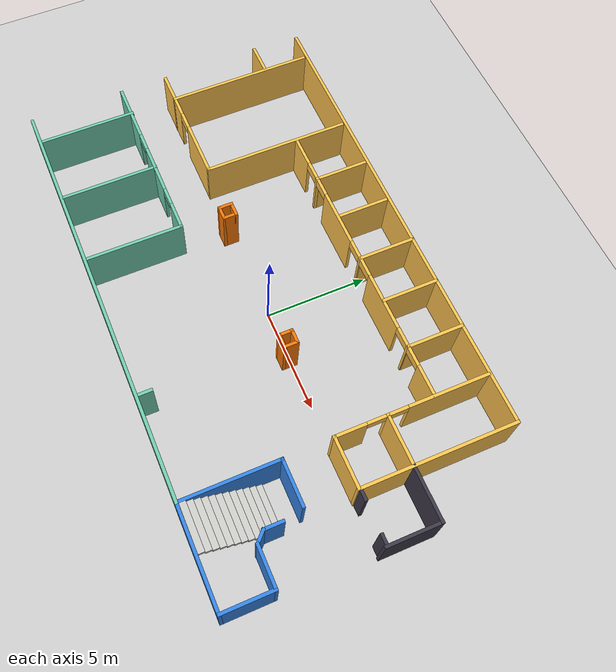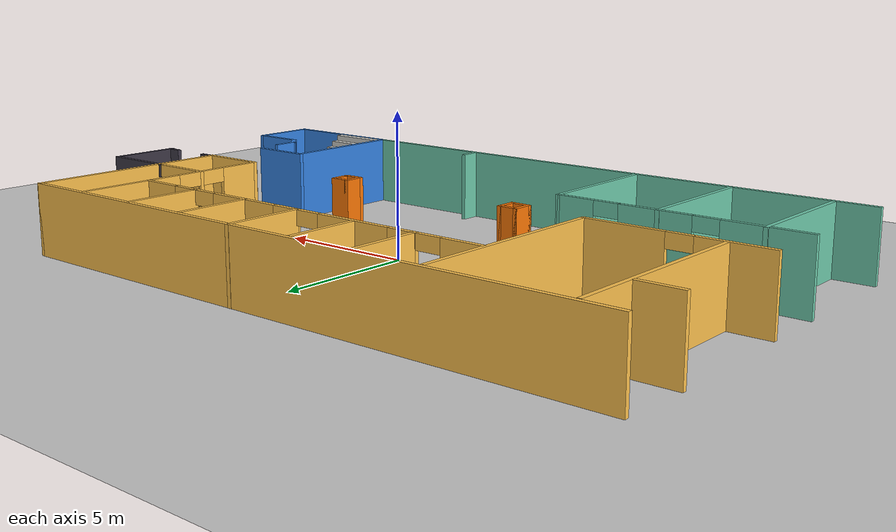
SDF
<sdf version="1.7">
 <world name="default">
  <model name="ground_plane">
   <static>1</static>
   <link name="link">
    <collision name="collision">
     <geometry><plane><normal>0 0 1</normal><size>100 100</size></plane></geometry>
     <surface>
      <contact><collide_bitmask>65535</collide_bitmask></contact>
      <friction><ode><mu>100</mu><mu2>50</mu2></ode></friction>
     </surface>
    </collision>
    <visual name="visual">
     <cast_shadows>0</cast_shadows>
     <geometry><plane><normal>0 0 1</normal><size>100 100</size></plane></geometry>
     <material>
      <script><uri>file://media/materials/scripts/gazebo.material</uri><name>Gazebo/Grey</name></script>
     </material>
    </visual>
   </link>
  </model>
  <model name="HUMEA_LABF">
   <pose>-0.653403 0.039249 0 0 -0 0</pose>
   <link name="Stairs_2">
    <visual name="Stairs_2_Visual_0">
     <pose>9.09481 -3.61254 0.104167 0 -0 0</pose>
     <geometry><box><size>2.18072 0.301964 0.208333</size></box></geometry>
     <material>
      <script><uri>file://media/materials/scripts/gazebo.material</uri><name>Gazebo/CeilingTiled</name></script>
      <ambient>0.964706 0.827451 0.176471 1</ambient>
     </material>
     <meta><layer>0</layer></meta>
    </visual>
    <collision name="Stairs_2_Collision_0">
     <geometry><box><size>2.18072 0.301964 0.208333</size></box></geometry>
     <pose>9.09481 -3.61254 0.104167 0 -0 0</pose>
    </collision>
    <visual name="Stairs_2_Visual_1">
     <pose>9.09481 -3.91451 0.3125 0 -0 0</pose>
     <geometry><box><size>2.18072 0.301964 0.208333</size></box></geometry>
     <material>
      <script><uri>file://media/materials/scripts/gazebo.material</uri><name>Gazebo/CeilingTiled</name></script>
      <ambient>0.964706 0.827451 0.176471 1</ambient>
     </material>
     <meta><layer>0</layer></meta>
    </visual>
    <collision name="Stairs_2_Collision_1">
     <geometry><box><size>2.18072 0.301964 0.208333</size></box></geometry>
     <pose>9.09481 -3.91451 0.3125 0 -0 0</pose>
    </collision>
    <visual name="Stairs_2_Visual_2">
     <pose>9.09481 -4.21647 0.520833 0 -0 0</pose>
     <geometry><box><size>2.18072 0.301964 0.208333</size></box></geometry>
     <material>
      <script><uri>file://media/materials/scripts/gazebo.material</uri><name>Gazebo/CeilingTiled</name></script>
      <ambient>0.964706 0.827451 0.176471 1</ambient>
     </material>
     <meta><layer>0</layer></meta>
    </visual>
    <collision name="Stairs_2_Collision_2">
     <geometry><box><size>2.18072 0.301964 0.208333</size></box></geometry>
     <pose>9.09481 -4.21647 0.520833 0 -0 0</pose>
    </collision>
    <visual name="Stairs_2_Visual_3">
     <pose>9.09481 -4.51844 0.729167 0 -0 0</pose>
     <geometry><box><size>2.18072 0.301964 0.208333</size></box></geometry>
     <material>
      <script><uri>file://media/materials/scripts/gazebo.material</uri><name>Gazebo/CeilingTiled</name></script>
      <ambient>0.964706 0.827451 0.176471 1</ambient>
     </material>
     <meta><layer>0</layer></meta>
    </visual>
    <collision name="Stairs_2_Collision_3">
     <geometry><box><size>2.18072 0.301964 0.208333</size></box></geometry>
     <pose>9.09481 -4.51844 0.729167 0 -0 0</pose>
    </collision>
    <visual name="Stairs_2_Visual_4">
     <pose>9.09481 -4.8204 0.9375 0 -0 0</pose>
     <geometry><box><size>2.18072 0.301964 0.208333</size></box></geometry>
     <material>
      <script><uri>file://media/materials/scripts/gazebo.material</uri><name>Gazebo/CeilingTiled</name></script>
      <ambient>0.964706 0.827451 0.176471 1</ambient>
     </material>
     <meta><layer>0</layer></meta>
    </visual>
    <collision name="Stairs_2_Collision_4">
     <geometry><box><size>2.18072 0.301964 0.208333</size></box></geometry>
     <pose>9.09481 -4.8204 0.9375 0 -0 0</pose>
    </collision>
    <visual name="Stairs_2_Visual_5">
     <pose>9.09481 -5.12236 1.14583 0 -0 0</pose>
     <geometry><box><size>2.18072 0.301964 0.208333</size></box></geometry>
     <material>
      <script><uri>file://media/materials/scripts/gazebo.material</uri><name>Gazebo/CeilingTiled</name></script>
      <ambient>0.964706 0.827451 0.176471 1</ambient>
     </material>
     <meta><layer>0</layer></meta>
    </visual>
    <collision name="Stairs_2_Collision_5">
     <geometry><box><size>2.18072 0.301964 0.208333</size></box></geometry>
     <pose>9.09481 -5.12236 1.14583 0 -0 0</pose>
    </collision>
    <visual name="Stairs_2_Visual_6">
     <pose>9.09481 -5.42433 1.35417 0 -0 0</pose>
     <geometry><box><size>2.18072 0.301964 0.208333</size></box></geometry>
     <material>
      <script><uri>file://media/materials/scripts/gazebo.material</uri><name>Gazebo/CeilingTiled</name></script>
      <ambient>0.964706 0.827451 0.176471 1</ambient>
     </material>
     <meta><layer>0</layer></meta>
    </visual>
    <collision name="Stairs_2_Collision_6">
     <geometry><box><size>2.18072 0.301964 0.208333</size></box></geometry>
     <pose>9.09481 -5.42433 1.35417 0 -0 0</pose>
    </collision>
    <visual name="Stairs_2_Visual_7">
     <pose>9.09481 -5.72629 1.5625 0 -0 0</pose>
     <geometry><box><size>2.18072 0.301964 0.208333</size></box></geometry>
     <material>
      <script><uri>file://media/materials/scripts/gazebo.material</uri><name>Gazebo/CeilingTiled</name></script>
      <ambient>0.964706 0.827451 0.176471 1</ambient>
     </material>
     <meta><layer>0</layer></meta>
    </visual>
    <collision name="Stairs_2_Collision_7">
     <geometry><box><size>2.18072 0.301964 0.208333</size></box></geometry>
     <pose>9.09481 -5.72629 1.5625 0 -0 0</pose>
    </collision>
    <visual name="Stairs_2_Visual_8">
     <pose>9.09481 -6.02826 1.77083 0 -0 0</pose>
     <geometry><box><size>2.18072 0.301964 0.208333</size></box></geometry>
     <material>
      <script><uri>file://media/materials/scripts/gazebo.material</uri><name>Gazebo/CeilingTiled</name></script>
      <ambient>0.964706 0.827451 0.176471 1</ambient>
     </material>
     <meta><layer>0</layer></meta>
    </visual>
    <collision name="Stairs_2_Collision_8">
     <geometry><box><size>2.18072 0.301964 0.208333</size></box></geometry>
     <pose>9.09481 -6.02826 1.77083 0 -0 0</pose>
    </collision>
    <visual name="Stairs_2_Visual_9">
     <pose>9.09481 -6.33022 1.97917 0 -0 0</pose>
     <geometry><box><size>2.18072 0.301964 0.208333</size></box></geometry>
     <material>
      <script><uri>file://media/materials/scripts/gazebo.material</uri><name>Gazebo/CeilingTiled</name></script>
      <ambient>0.964706 0.827451 0.176471 1</ambient>
     </material>
     <meta><layer>0</layer></meta>
    </visual>
    <collision name="Stairs_2_Collision_9">
     <geometry><box><size>2.18072 0.301964 0.208333</size></box></geometry>
     <pose>9.09481 -6.33022 1.97917 0 -0 0</pose>
    </collision>
    <visual name="Stairs_2_Visual_10">
     <pose>9.09481 -6.63218 2.1875 0 -0 0</pose>
     <geometry><box><size>2.18072 0.301964 0.208333</size></box></geometry>
     <material>
      <script><uri>file://media/materials/scripts/gazebo.material</uri><name>Gazebo/CeilingTiled</name></script>
      <ambient>0.964706 0.827451 0.176471 1</ambient>
     </material>
     <meta><layer>0</layer></meta>
    </visual>
    <collision name="Stairs_2_Collision_10">
     <geometry><box><size>2.18072 0.301964 0.208333</size></box></geometry>
     <pose>9.09481 -6.63218 2.1875 0 -0 0</pose>
    </collision>
    <visual name="Stairs_2_Visual_11">
     <pose>9.09481 -6.93415 2.39583 0 -0 0</pose>
     <geometry><box><size>2.18072 0.301964 0.208333</size></box></geometry>
     <material>
      <script><uri>file://media/materials/scripts/gazebo.material</uri><name>Gazebo/CeilingTiled</name></script>
      <ambient>0.964706 0.827451 0.176471 1</ambient>
     </material>
     <meta><layer>0</layer></meta>
    </visual>
    <collision name="Stairs_2_Collision_11">
     <geometry><box><size>2.18072 0.301964 0.208333</size></box></geometry>
     <pose>9.09481 -6.93415 2.39583 0 -0 0</pose>
    </collision>
   </link>
   <link name="Wall_10">
    <pose>-9.62585 -0.121188 0 0 -0 0</pose>
    <visual name="Wall_10_Visual_0">
     <pose>-1.866 0 1.25 0 -0 0</pose>
     <geometry><box><size>2.51799 0.15 2.5</size></box></geometry>
     <material>
      <script><uri>file://media/materials/scripts/gazebo.material</uri><name>Gazebo/Grey</name></script>
      <ambient>1 0.764706 0.305882 1</ambient>
     </material>
     <meta><layer>0</layer></meta>
    </visual>
    <collision name="Wall_10_Collision_0">
     <geometry><box><size>2.51799 0.15 2.5</size></box></geometry>
     <pose>-1.866 0 1.25 0 -0 0</pose>
    </collision>
    <visual name="Wall_10_Visual_1">
     <pose>1.709 0 1.25 0 -0 0</pose>
     <geometry><box><size>2.83201 0.15 2.5</size></box></geometry>
     <material>
      <script><uri>file://media/materials/scripts/gazebo.material</uri><name>Gazebo/Grey</name></script>
      <ambient>1 0.764706 0.305882 1</ambient>
     </material>
     <meta><layer>0</layer></meta>
    </visual>
    <collision name="Wall_10_Collision_1">
     <geometry><box><size>2.83201 0.15 2.5</size></box></geometry>
     <pose>1.709 0 1.25 0 -0 0</pose>
    </collision>
    <visual name="Wall_10_Visual_2">
     <pose>-0.157006 0 2.25 0 -0 0</pose>
     <geometry><box><size>0.9 0.15 0.5</size></box></geometry>
     <material>
      <script><uri>file://media/materials/scripts/gazebo.material</uri><name>Gazebo/Grey</name></script>
      <ambient>1 0.764706 0.305882 1</ambient>
     </material>
     <meta><layer>0</layer></meta>
    </visual>
    <collision name="Wall_10_Collision_2">
     <geometry><box><size>0.9 0.15 0.5</size></box></geometry>
     <pose>-0.157006 0 2.25 0 -0 0</pose>
    </collision>
   </link>
   <link name="Wall_11">
    <collision name="Wall_11_Collision">
     <geometry><box><size>7.25 0.15 2.5</size></box></geometry>
     <pose>0 0 1.25 0 -0 0</pose>
    </collision>
    <visual name="Wall_11_Visual">
     <pose>0 0 1.25 0 -0 0</pose>
     <geometry><box><size>7.25 0.15 2.5</size></box></geometry>
     <material>
      <script><uri>file://media/materials/scripts/gazebo.material</uri><name>Gazebo/Grey</name></script>
      <ambient>1 0.764706 0.305882 1</ambient>
     </material>
     <meta><layer>0</layer></meta>
    </visual>
    <pose>-6.57585 3.42881 0 0 -0 1.5708</pose>
   </link>
   <link name="Wall_13">
    <collision name="Wall_13_Collision">
     <geometry><box><size>1.5 0.15 2.5</size></box></geometry>
     <pose>0 0 1.25 0 -0 0</pose>
    </collision>
    <visual name="Wall_13_Visual">
     <pose>0 0 1.25 0 -0 0</pose>
     <geometry><box><size>1.5 0.15 2.5</size></box></geometry>
     <material>
      <script><uri>file://media/materials/scripts/gazebo.material</uri><name>Gazebo/Grey</name></script>
      <ambient>1 0.764706 0.305882 1</ambient>
     </material>
     <meta><layer>0</layer></meta>
    </visual>
    <pose>-12.0496 4.82333 0 0 -0 0</pose>
   </link>
   <link name="Wall_15">
    <pose>0.709218 4.49976 0 0 -0 0</pose>
    <visual name="Wall_15_Visual_0">
     <pose>-6.50165 0 1.25 0 -0 0</pose>
     <geometry><box><size>1.4967 0.15 2.5</size></box></geometry>
     <material>
      <script><uri>file://media/materials/scripts/gazebo.material</uri><name>Gazebo/Grey</name></script>
      <ambient>1 0.764706 0.305882 1</ambient>
     </material>
     <meta><layer>0</layer></meta>
    </visual>
    <collision name="Wall_15_Collision_0">
     <geometry><box><size>1.4967 0.15 2.5</size></box></geometry>
     <pose>-6.50165 0 1.25 0 -0 0</pose>
    </collision>
    <visual name="Wall_15_Visual_1">
     <pose>-4.7792 0 1.25 0 -0 0</pose>
     <geometry><box><size>0.148204 0.15 2.5</size></box></geometry>
     <material>
      <script><uri>file://media/materials/scripts/gazebo.material</uri><name>Gazebo/Grey</name></script>
      <ambient>1 0.764706 0.305882 1</ambient>
     </material>
     <meta><layer>0</layer></meta>
    </visual>
    <collision name="Wall_15_Collision_1">
     <geometry><box><size>0.148204 0.15 2.5</size></box></geometry>
     <pose>-4.7792 0 1.25 0 -0 0</pose>
    </collision>
    <visual name="Wall_15_Visual_2">
     <pose>-2.40226 0 1.25 0 -0 0</pose>
     <geometry><box><size>2.80567 0.15 2.5</size></box></geometry>
     <material>
      <script><uri>file://media/materials/scripts/gazebo.material</uri><name>Gazebo/Grey</name></script>
      <ambient>1 0.764706 0.305882 1</ambient>
     </material>
     <meta><layer>0</layer></meta>
    </visual>
    <collision name="Wall_15_Collision_2">
     <geometry><box><size>2.80567 0.15 2.5</size></box></geometry>
     <pose>-2.40226 0 1.25 0 -0 0</pose>
    </collision>
    <visual name="Wall_15_Visual_3">
     <pose>-0.032372 0 1.25 0 -0 0</pose>
     <geometry><box><size>0.134115 0.15 2.5</size></box></geometry>
     <material>
      <script><uri>file://media/materials/scripts/gazebo.material</uri><name>Gazebo/Grey</name></script>
      <ambient>1 0.764706 0.305882 1</ambient>
     </material>
     <meta><layer>0</layer></meta>
    </visual>
    <collision name="Wall_15_Collision_3">
     <geometry><box><size>0.134115 0.15 2.5</size></box></geometry>
     <pose>-0.032372 0 1.25 0 -0 0</pose>
    </collision>
    <visual name="Wall_15_Visual_4">
     <pose>2.35489 0 1.25 0 -0 0</pose>
     <geometry><box><size>2.84041 0.15 2.5</size></box></geometry>
     <material>
      <script><uri>file://media/materials/scripts/gazebo.material</uri><name>Gazebo/Grey</name></script>
      <ambient>1 0.764706 0.305882 1</ambient>
     </material>
     <meta><layer>0</layer></meta>
    </visual>
    <collision name="Wall_15_Collision_4">
     <geometry><box><size>2.84041 0.15 2.5</size></box></geometry>
     <pose>2.35489 0 1.25 0 -0 0</pose>
    </collision>
    <visual name="Wall_15_Visual_5">
     <pose>4.73861 0 1.25 0 -0 0</pose>
     <geometry><box><size>0.127028 0.15 2.5</size></box></geometry>
     <material>
      <script><uri>file://media/materials/scripts/gazebo.material</uri><name>Gazebo/Grey</name></script>
      <ambient>1 0.764706 0.305882 1</ambient>
     </material>
     <meta><layer>0</layer></meta>
    </visual>
    <collision name="Wall_15_Collision_5">
     <geometry><box><size>0.127028 0.15 2.5</size></box></geometry>
     <pose>4.73861 0 1.25 0 -0 0</pose>
    </collision>
    <visual name="Wall_15_Visual_6">
     <pose>6.47606 0 1.25 0 -0 0</pose>
     <geometry><box><size>1.54787 0.15 2.5</size></box></geometry>
     <material>
      <script><uri>file://media/materials/scripts/gazebo.material</uri><name>Gazebo/Grey</name></script>
      <ambient>1 0.764706 0.305882 1</ambient>
     </material>
     <meta><layer>0</layer></meta>
    </visual>
    <collision name="Wall_15_Collision_6">
     <geometry><box><size>1.54787 0.15 2.5</size></box></geometry>
     <pose>6.47606 0 1.25 0 -0 0</pose>
    </collision>
    <visual name="Wall_15_Visual_7">
     <pose>-5.3033 0 2.25 0 -0 0</pose>
     <geometry><box><size>0.9 0.15 0.5</size></box></geometry>
     <material>
      <script><uri>file://media/materials/scripts/gazebo.material</uri><name>Gazebo/Grey</name></script>
      <ambient>1 0.764706 0.305882 1</ambient>
     </material>
     <meta><layer>0</layer></meta>
    </visual>
    <collision name="Wall_15_Collision_7">
     <geometry><box><size>0.9 0.15 0.5</size></box></geometry>
     <pose>-5.3033 0 2.25 0 -0 0</pose>
    </collision>
    <visual name="Wall_15_Visual_8">
     <pose>-4.2551 0 2.25 0 -0 0</pose>
     <geometry><box><size>0.9 0.15 0.5</size></box></geometry>
     <material>
      <script><uri>file://media/materials/scripts/gazebo.material</uri><name>Gazebo/Grey</name></script>
      <ambient>1 0.764706 0.305882 1</ambient>
     </material>
     <meta><layer>0</layer></meta>
    </visual>
    <collision name="Wall_15_Collision_8">
     <geometry><box><size>0.9 0.15 0.5</size></box></geometry>
     <pose>-4.2551 0 2.25 0 -0 0</pose>
    </collision>
    <visual name="Wall_15_Visual_9">
     <pose>-0.54943 0 2.25 0 -0 0</pose>
     <geometry><box><size>0.9 0.15 0.5</size></box></geometry>
     <material>
      <script><uri>file://media/materials/scripts/gazebo.material</uri><name>Gazebo/Grey</name></script>
      <ambient>1 0.764706 0.305882 1</ambient>
     </material>
     <meta><layer>0</layer></meta>
    </visual>
    <collision name="Wall_15_Collision_9">
     <geometry><box><size>0.9 0.15 0.5</size></box></geometry>
     <pose>-0.54943 0 2.25 0 -0 0</pose>
    </collision>
    <visual name="Wall_15_Visual_10">
     <pose>0.484685 0 2.25 0 -0 0</pose>
     <geometry><box><size>0.9 0.15 0.5</size></box></geometry>
     <material>
      <script><uri>file://media/materials/scripts/gazebo.material</uri><name>Gazebo/Grey</name></script>
      <ambient>1 0.764706 0.305882 1</ambient>
     </material>
     <meta><layer>0</layer></meta>
    </visual>
    <collision name="Wall_15_Collision_10">
     <geometry><box><size>0.9 0.15 0.5</size></box></geometry>
     <pose>0.484685 0 2.25 0 -0 0</pose>
    </collision>
    <visual name="Wall_15_Visual_11">
     <pose>4.2251 0 2.25 0 -0 0</pose>
     <geometry><box><size>0.9 0.15 0.5</size></box></geometry>
     <material>
      <script><uri>file://media/materials/scripts/gazebo.material</uri><name>Gazebo/Grey</name></script>
      <ambient>1 0.764706 0.305882 1</ambient>
     </material>
     <meta><layer>0</layer></meta>
    </visual>
    <collision name="Wall_15_Collision_11">
     <geometry><box><size>0.9 0.15 0.5</size></box></geometry>
     <pose>4.2251 0 2.25 0 -0 0</pose>
    </collision>
    <visual name="Wall_15_Visual_12">
     <pose>5.25213 0 2.25 0 -0 0</pose>
     <geometry><box><size>0.9 0.15 0.5</size></box></geometry>
     <material>
      <script><uri>file://media/materials/scripts/gazebo.material</uri><name>Gazebo/Grey</name></script>
      <ambient>1 0.764706 0.305882 1</ambient>
     </material>
     <meta><layer>0</layer></meta>
    </visual>
    <collision name="Wall_15_Collision_12">
     <geometry><box><size>0.9 0.15 0.5</size></box></geometry>
     <pose>5.25213 0 2.25 0 -0 0</pose>
    </collision>
   </link>
   <link name="Wall_17">
    <collision name="Wall_17_Collision">
     <geometry><box><size>2.5 0.15 2.5</size></box></geometry>
     <pose>0 0 1.25 0 -0 0</pose>
    </collision>
    <visual name="Wall_17_Visual">
     <pose>0 0 1.25 0 -0 0</pose>
     <geometry><box><size>2.5 0.15 2.5</size></box></geometry>
     <material>
      <script><uri>file://media/materials/scripts/gazebo.material</uri><name>Gazebo/Grey</name></script>
      <ambient>1 0.764706 0.305882 1</ambient>
     </material>
     <meta><layer>0</layer></meta>
    </visual>
    <pose>-4.06326 5.823 0 0 -0 -1.5708</pose>
   </link>
   <link name="Wall_19">
    <collision name="Wall_19_Collision">
     <geometry><box><size>2.5 0.15 2.5</size></box></geometry>
     <pose>0 0 1.25 0 -0 0</pose>
    </collision>
    <visual name="Wall_19_Visual">
     <pose>0 0 1.25 0 -0 0</pose>
     <geometry><box><size>2.5 0.15 2.5</size></box></geometry>
     <material>
      <script><uri>file://media/materials/scripts/gazebo.material</uri><name>Gazebo/Grey</name></script>
      <ambient>1 0.764706 0.305882 1</ambient>
     </material>
     <meta><layer>0</layer></meta>
    </visual>
    <pose>-1.74687 5.8141 0 0 -0 -1.5708</pose>
   </link>
   <link name="Wall_21">
    <collision name="Wall_21_Collision">
     <geometry><box><size>2.75 0.15 2.5</size></box></geometry>
     <pose>0 0 1.25 0 -0 0</pose>
    </collision>
    <visual name="Wall_21_Visual">
     <pose>0 0 1.25 0 -0 0</pose>
     <geometry><box><size>2.75 0.15 2.5</size></box></geometry>
     <material>
      <script><uri>file://media/materials/scripts/gazebo.material</uri><name>Gazebo/Grey</name></script>
      <ambient>1 0.764706 0.305882 1</ambient>
     </material>
     <meta><layer>0</layer></meta>
    </visual>
    <pose>0.678051 5.86584 0 0 -0 -1.5708</pose>
   </link>
   <link name="Wall_23">
    <collision name="Wall_23_Collision">
     <geometry><box><size>2.75 0.15 2.5</size></box></geometry>
     <pose>0 0 1.25 0 -0 0</pose>
    </collision>
    <visual name="Wall_23_Visual">
     <pose>0 0 1.25 0 -0 0</pose>
     <geometry><box><size>2.75 0.15 2.5</size></box></geometry>
     <material>
      <script><uri>file://media/materials/scripts/gazebo.material</uri><name>Gazebo/Grey</name></script>
      <ambient>1 0.764706 0.305882 1</ambient>
     </material>
     <meta><layer>0</layer></meta>
    </visual>
    <pose>3.02991 5.83125 0 0 -0 -1.5708</pose>
   </link>
   <link name="Wall_25">
    <collision name="Wall_25_Collision">
     <geometry><box><size>2.75 0.15 2.5</size></box></geometry>
     <pose>0 0 1.25 0 -0 0</pose>
    </collision>
    <visual name="Wall_25_Visual">
     <pose>0 0 1.25 0 -0 0</pose>
     <geometry><box><size>2.75 0.15 2.5</size></box></geometry>
     <material>
      <script><uri>file://media/materials/scripts/gazebo.material</uri><name>Gazebo/Grey</name></script>
      <ambient>1 0.764706 0.305882 1</ambient>
     </material>
     <meta><layer>0</layer></meta>
    </visual>
    <pose>5.45555 5.83943 0 0 -0 -1.5708</pose>
   </link>
   <link name="Wall_27">
    <collision name="Wall_27_Collision">
     <geometry><box><size>2.25 0.15 2.5</size></box></geometry>
     <pose>0 0 1.25 0 -0 0</pose>
    </collision>
    <visual name="Wall_27_Visual">
     <pose>0 0 1.25 0 -0 0</pose>
     <geometry><box><size>2.25 0.15 2.5</size></box></geometry>
     <material>
      <script><uri>file://media/materials/scripts/gazebo.material</uri><name>Gazebo/Grey</name></script>
      <ambient>1 0.764706 0.305882 1</ambient>
     </material>
     <meta><layer>0</layer></meta>
    </visual>
    <pose>9.07464 2.29514 0 0 -0 3.14159</pose>
   </link>
   <link name="Wall_29">
    <pose>-8.3773 -2.46976 0 0 -0 0</pose>
    <visual name="Wall_29_Visual_0">
     <pose>-2.89279 0 1.25 0 -0 0</pose>
     <geometry><box><size>2.96442 0.15 2.5</size></box></geometry>
     <material>
      <script><uri>file://media/materials/scripts/gazebo.material</uri><name>Gazebo/Grey</name></script>
      <ambient>0.435294 0.796078 0.67451 1</ambient>
     </material>
     <meta><layer>0</layer></meta>
    </visual>
    <collision name="Wall_29_Collision_0">
     <geometry><box><size>2.96442 0.15 2.5</size></box></geometry>
     <pose>-2.89279 0 1.25 0 -0 0</pose>
    </collision>
    <visual name="Wall_29_Visual_1">
     <pose>0.769166 0 1.25 0 -0 0</pose>
     <geometry><box><size>2.5595 0.15 2.5</size></box></geometry>
     <material>
      <script><uri>file://media/materials/scripts/gazebo.material</uri><name>Gazebo/Grey</name></script>
      <ambient>0.435294 0.796078 0.67451 1</ambient>
     </material>
     <meta><layer>0</layer></meta>
    </visual>
    <collision name="Wall_29_Collision_1">
     <geometry><box><size>2.5595 0.15 2.5</size></box></geometry>
     <pose>0.769166 0 1.25 0 -0 0</pose>
    </collision>
    <visual name="Wall_29_Visual_2">
     <pose>3.66196 0 1.25 0 -0 0</pose>
     <geometry><box><size>1.42608 0.15 2.5</size></box></geometry>
     <material>
      <script><uri>file://media/materials/scripts/gazebo.material</uri><name>Gazebo/Grey</name></script>
      <ambient>0.435294 0.796078 0.67451 1</ambient>
     </material>
     <meta><layer>0</layer></meta>
    </visual>
    <collision name="Wall_29_Collision_2">
     <geometry><box><size>1.42608 0.15 2.5</size></box></geometry>
     <pose>3.66196 0 1.25 0 -0 0</pose>
    </collision>
    <visual name="Wall_29_Visual_3">
     <pose>-0.960584 0 2.25 0 -0 0</pose>
     <geometry><box><size>0.9 0.15 0.5</size></box></geometry>
     <material>
      <script><uri>file://media/materials/scripts/gazebo.material</uri><name>Gazebo/Grey</name></script>
      <ambient>0.435294 0.796078 0.67451 1</ambient>
     </material>
     <meta><layer>0</layer></meta>
    </visual>
    <collision name="Wall_29_Collision_3">
     <geometry><box><size>0.9 0.15 0.5</size></box></geometry>
     <pose>-0.960584 0 2.25 0 -0 0</pose>
    </collision>
    <visual name="Wall_29_Visual_4">
     <pose>2.49892 0 2.25 0 -0 0</pose>
     <geometry><box><size>0.9 0.15 0.5</size></box></geometry>
     <material>
      <script><uri>file://media/materials/scripts/gazebo.material</uri><name>Gazebo/Grey</name></script>
      <ambient>0.435294 0.796078 0.67451 1</ambient>
     </material>
     <meta><layer>0</layer></meta>
    </visual>
    <collision name="Wall_29_Collision_4">
     <geometry><box><size>0.9 0.15 0.5</size></box></geometry>
     <pose>2.49892 0 2.25 0 -0 0</pose>
    </collision>
   </link>
   <link name="Wall_3">
    <collision name="Wall_3_Collision">
     <geometry><box><size>22.9807 0.15 2.5</size></box></geometry>
     <pose>0 0 1.25 0 -0 0</pose>
    </collision>
    <visual name="Wall_3_Visual">
     <pose>0 0 1.25 0 -0 0</pose>
     <geometry><box><size>22.9807 0.15 2.5</size></box></geometry>
     <material>
      <script><uri>file://media/materials/scripts/gazebo.material</uri><name>Gazebo/Grey</name></script>
      <ambient>1 0.764706 0.305882 1</ambient>
     </material>
     <meta><layer>0</layer></meta>
    </visual>
    <pose>-1.17346 7.15775 0 0 -0 0</pose>
   </link>
   <link name="Wall_30">
    <collision name="Wall_30_Collision">
     <geometry><box><size>4.75 0.15 2.5</size></box></geometry>
     <pose>0 0 1.25 0 -0 0</pose>
    </collision>
    <visual name="Wall_30_Visual">
     <pose>0 0 1.25 0 -0 0</pose>
     <geometry><box><size>4.75 0.15 2.5</size></box></geometry>
     <material>
      <script><uri>file://media/materials/scripts/gazebo.material</uri><name>Gazebo/Grey</name></script>
      <ambient>0.435294 0.796078 0.67451 1</ambient>
     </material>
     <meta><layer>0</layer></meta>
    </visual>
    <pose>-4.0773 -4.76976 0 0 -0 -1.5708</pose>
   </link>
   <link name="Wall_35">
    <collision name="Wall_35_Collision">
     <geometry><box><size>20.75 0.15 2.5</size></box></geometry>
     <pose>0 0 1.25 0 -0 0</pose>
    </collision>
    <visual name="Wall_35_Visual">
     <pose>0 0 1.25 0 -0 0</pose>
     <geometry><box><size>20.75 0.15 2.5</size></box></geometry>
     <material>
      <script><uri>file://media/materials/scripts/gazebo.material</uri><name>Gazebo/Grey</name></script>
      <ambient>0.435294 0.796078 0.67451 1</ambient>
     </material>
     <meta><layer>0</layer></meta>
    </visual>
    <pose>-2.35433 -7.16563 0 0 -0 3.14159</pose>
   </link>
   <link name="Wall_37">
    <collision name="Wall_37_Collision">
     <geometry><box><size>4.75 0.15 2.5</size></box></geometry>
     <pose>0 0 1.25 0 -0 0</pose>
    </collision>
    <visual name="Wall_37_Visual">
     <pose>0 0 1.25 0 -0 0</pose>
     <geometry><box><size>4.75 0.15 2.5</size></box></geometry>
     <material>
      <script><uri>file://media/materials/scripts/gazebo.material</uri><name>Gazebo/Grey</name></script>
      <ambient>0.207843 0.517647 0.894118 1</ambient>
     </material>
     <meta><layer>0</layer></meta>
    </visual>
    <pose>7.94567 -4.86564 0 0 -0 -1.5708</pose>
   </link>
   <link name="Wall_4">
    <collision name="Wall_4_Collision">
     <geometry><box><size>7.48904 0.15 2.5</size></box></geometry>
     <pose>0 0 1.25 0 -0 0</pose>
    </collision>
    <visual name="Wall_4_Visual">
     <pose>0 0 1.25 0 -0 0</pose>
     <geometry><box><size>7.48904 0.15 2.5</size></box></geometry>
     <material>
      <script><uri>file://media/materials/scripts/gazebo.material</uri><name>Gazebo/Grey</name></script>
      <ambient>1 0.764706 0.305882 1</ambient>
     </material>
     <meta><layer>0</layer></meta>
    </visual>
    <pose>10.2612 3.48823 0 0 -0 -1.5708</pose>
   </link>
   <link name="Wall_41">
    <collision name="Wall_41_Collision">
     <geometry><box><size>2.25 0.15 2.5</size></box></geometry>
     <pose>0 0 1.25 0 -0 0</pose>
    </collision>
    <visual name="Wall_41_Visual">
     <pose>0 0 1.25 0 -0 0</pose>
     <geometry><box><size>2.25 0.15 2.5</size></box></geometry>
     <material>
      <script><uri>file://media/materials/scripts/gazebo.material</uri><name>Gazebo/Grey</name></script>
      <ambient>0.207843 0.517647 0.894118 1</ambient>
     </material>
     <meta><layer>0</layer></meta>
    </visual>
    <pose>8.99519 -2.54083 0 0 -0 3.14159</pose>
   </link>
   <link name="Wall_43">
    <collision name="Wall_43_Collision">
     <geometry><box><size>0.75 0.15 2.5</size></box></geometry>
     <pose>0 0 1.25 0 -0 0</pose>
    </collision>
    <visual name="Wall_43_Visual">
     <pose>0 0 1.25 0 -0 0</pose>
     <geometry><box><size>0.75 0.15 2.5</size></box></geometry>
     <material>
      <script><uri>file://media/materials/scripts/gazebo.material</uri><name>Gazebo/Grey</name></script>
      <ambient>0.435294 0.796078 0.67451 1</ambient>
     </material>
     <meta><layer>0</layer></meta>
    </visual>
    <pose>3.06146 -6.7839 0 0 -0 1.5708</pose>
   </link>
   <link name="Wall_45">
    <collision name="Wall_45_Collision">
     <geometry><box><size>0.75 0.15 2.5</size></box></geometry>
     <pose>0 0 1.25 0 -0 0</pose>
    </collision>
    <visual name="Wall_45_Visual">
     <pose>0 0 1.25 0 -0 0</pose>
     <geometry><box><size>0.75 0.15 2.5</size></box></geometry>
     <material>
      <script><uri>file://media/materials/scripts/gazebo.material</uri><name>Gazebo/Grey</name></script>
      <ambient>0.996078 0.47451 0.0196078 1</ambient>
     </material>
     <meta><layer>0</layer></meta>
    </visual>
    <pose>3.0974 0.142151 0 0 -0 0</pose>
   </link>
   <link name="Wall_46">
    <collision name="Wall_46_Collision">
     <geometry><box><size>0.75 0.15 2.5</size></box></geometry>
     <pose>0 0 1.25 0 -0 0</pose>
    </collision>
    <visual name="Wall_46_Visual">
     <pose>0 0 1.25 0 -0 0</pose>
     <geometry><box><size>0.75 0.15 2.5</size></box></geometry>
     <material>
      <script><uri>file://media/materials/scripts/gazebo.material</uri><name>Gazebo/Grey</name></script>
      <ambient>0.996078 0.47451 0.0196078 1</ambient>
     </material>
     <meta><layer>0</layer></meta>
    </visual>
    <pose>3.3974 -0.157849 0 0 -0 -1.5708</pose>
   </link>
   <link name="Wall_47">
    <collision name="Wall_47_Collision">
     <geometry><box><size>0.75 0.15 2.5</size></box></geometry>
     <pose>0 0 1.25 0 -0 0</pose>
    </collision>
    <visual name="Wall_47_Visual">
     <pose>0 0 1.25 0 -0 0</pose>
     <geometry><box><size>0.75 0.15 2.5</size></box></geometry>
     <material>
      <script><uri>file://media/materials/scripts/gazebo.material</uri><name>Gazebo/Grey</name></script>
      <ambient>0.996078 0.47451 0.0196078 1</ambient>
     </material>
     <meta><layer>0</layer></meta>
    </visual>
    <pose>3.0974 -0.457849 0 0 -0 3.14159</pose>
   </link>
   <link name="Wall_48">
    <collision name="Wall_48_Collision">
     <geometry><box><size>0.75 0.15 2.5</size></box></geometry>
     <pose>0 0 1.25 0 -0 0</pose>
    </collision>
    <visual name="Wall_48_Visual">
     <pose>0 0 1.25 0 -0 0</pose>
     <geometry><box><size>0.75 0.15 2.5</size></box></geometry>
     <material>
      <script><uri>file://media/materials/scripts/gazebo.material</uri><name>Gazebo/Grey</name></script>
      <ambient>0.996078 0.47451 0.0196078 1</ambient>
     </material>
     <meta><layer>0</layer></meta>
    </visual>
    <pose>2.7974 -0.157849 0 0 -0 1.5708</pose>
   </link>
   <link name="Wall_5">
    <collision name="Wall_5_Collision">
     <geometry><box><size>2.50001 0.15 2.5</size></box></geometry>
     <pose>0 0 1.25 0 -0 0</pose>
    </collision>
    <visual name="Wall_5_Visual">
     <pose>0 0 1.25 0 -0 0</pose>
     <geometry><box><size>2.50001 0.15 2.5</size></box></geometry>
     <material>
      <script><uri>file://media/materials/scripts/gazebo.material</uri><name>Gazebo/Grey</name></script>
      <ambient>1 0.764706 0.305882 1</ambient>
     </material>
     <meta><layer>0</layer></meta>
    </visual>
    <pose>9.08619 -0.181285 0 0 -0 3.14159</pose>
   </link>
   <link name="Wall_50">
    <collision name="Wall_50_Collision">
     <geometry><box><size>0.75 0.15 2.5</size></box></geometry>
     <pose>0 0 1.25 0 -0 0</pose>
    </collision>
    <visual name="Wall_50_Visual">
     <pose>0 0 1.25 0 -0 0</pose>
     <geometry><box><size>0.75 0.15 2.5</size></box></geometry>
     <material>
      <script><uri>file://media/materials/scripts/gazebo.material</uri><name>Gazebo/Grey</name></script>
      <ambient>0.996078 0.47451 0.0196078 1</ambient>
     </material>
     <meta><layer>0</layer></meta>
    </visual>
    <pose>-4.0293 0.148618 0 0 -0 0</pose>
   </link>
   <link name="Wall_51">
    <collision name="Wall_51_Collision">
     <geometry><box><size>0.75 0.15 2.5</size></box></geometry>
     <pose>0 0 1.25 0 -0 0</pose>
    </collision>
    <visual name="Wall_51_Visual">
     <pose>0 0 1.25 0 -0 0</pose>
     <geometry><box><size>0.75 0.15 2.5</size></box></geometry>
     <material>
      <script><uri>file://media/materials/scripts/gazebo.material</uri><name>Gazebo/Grey</name></script>
      <ambient>0.996078 0.47451 0.0196078 1</ambient>
     </material>
     <meta><layer>0</layer></meta>
    </visual>
    <pose>-3.7293 -0.151382 0 0 -0 -1.5708</pose>
   </link>
   <link name="Wall_52">
    <collision name="Wall_52_Collision">
     <geometry><box><size>0.75 0.15 2.5</size></box></geometry>
     <pose>0 0 1.25 0 -0 0</pose>
    </collision>
    <visual name="Wall_52_Visual">
     <pose>0 0 1.25 0 -0 0</pose>
     <geometry><box><size>0.75 0.15 2.5</size></box></geometry>
     <material>
      <script><uri>file://media/materials/scripts/gazebo.material</uri><name>Gazebo/Grey</name></script>
      <ambient>0.996078 0.47451 0.0196078 1</ambient>
     </material>
     <meta><layer>0</layer></meta>
    </visual>
    <pose>-4.0293 -0.451382 0 0 -0 3.14159</pose>
   </link>
   <link name="Wall_53">
    <collision name="Wall_53_Collision">
     <geometry><box><size>0.75 0.15 2.5</size></box></geometry>
     <pose>0 0 1.25 0 -0 0</pose>
    </collision>
    <visual name="Wall_53_Visual">
     <pose>0 0 1.25 0 -0 0</pose>
     <geometry><box><size>0.75 0.15 2.5</size></box></geometry>
     <material>
      <script><uri>file://media/materials/scripts/gazebo.material</uri><name>Gazebo/Grey</name></script>
      <ambient>0.996078 0.47451 0.0196078 1</ambient>
     </material>
     <meta><layer>0</layer></meta>
    </visual>
    <pose>-4.3293 -0.151382 0 0 -0 1.5708</pose>
   </link>
   <link name="Wall_55">
    <collision name="Wall_55_Collision">
     <geometry><box><size>4.75 0.15 2.5</size></box></geometry>
     <pose>0 0 1.25 0 -0 0</pose>
    </collision>
    <visual name="Wall_55_Visual">
     <pose>0 0 1.25 0 -0 0</pose>
     <geometry><box><size>4.75 0.15 2.5</size></box></geometry>
     <material>
      <script><uri>file://media/materials/scripts/gazebo.material</uri><name>Gazebo/Grey</name></script>
      <ambient>0.435294 0.796078 0.67451 1</ambient>
     </material>
     <meta><layer>0</layer></meta>
    </visual>
    <pose>-7.7074 -4.7567 0 0 -0 -1.5708</pose>
   </link>
   <link name="Wall_58">
    <collision name="Wall_58_Collision">
     <geometry><box><size>4.75 0.15 2.5</size></box></geometry>
     <pose>0 0 1.25 0 -0 0</pose>
    </collision>
    <visual name="Wall_58_Visual">
     <pose>0 0 1.25 0 -0 0</pose>
     <geometry><box><size>4.75 0.15 2.5</size></box></geometry>
     <material>
      <script><uri>file://media/materials/scripts/gazebo.material</uri><name>Gazebo/Grey</name></script>
      <ambient>0.435294 0.796078 0.67451 1</ambient>
     </material>
     <meta><layer>0</layer></meta>
    </visual>
    <pose>-11.2358 -4.72628 0 0 -0 -1.5708</pose>
   </link>
   <link name="Wall_6">
    <pose>7.91119 3.48549 0 0 -0 1.5708</pose>
    <visual name="Wall_6_Visual_0">
     <pose>-2.95664 0 1.25 0 -0 0</pose>
     <geometry><box><size>1.58124 0.15 2.5</size></box></geometry>
     <material>
      <script><uri>file://media/materials/scripts/gazebo.material</uri><name>Gazebo/Grey</name></script>
      <ambient>1 0.764706 0.305882 1</ambient>
     </material>
     <meta><layer>0</layer></meta>
    </visual>
    <collision name="Wall_6_Collision_0">
     <geometry><box><size>1.58124 0.15 2.5</size></box></geometry>
     <pose>-2.95664 0 1.25 0 -0 0</pose>
    </collision>
    <visual name="Wall_6_Visual_1">
     <pose>-1.19659 0 1.25 0 -0 0</pose>
     <geometry><box><size>0.138869 0.15 2.5</size></box></geometry>
     <material>
      <script><uri>file://media/materials/scripts/gazebo.material</uri><name>Gazebo/Grey</name></script>
      <ambient>1 0.764706 0.305882 1</ambient>
     </material>
     <meta><layer>0</layer></meta>
    </visual>
    <collision name="Wall_6_Collision_1">
     <geometry><box><size>0.138869 0.15 2.5</size></box></geometry>
     <pose>-1.19659 0 1.25 0 -0 0</pose>
    </collision>
    <visual name="Wall_6_Visual_2">
     <pose>1.76005 0 1.25 0 -0 0</pose>
     <geometry><box><size>3.97441 0.15 2.5</size></box></geometry>
     <material>
      <script><uri>file://media/materials/scripts/gazebo.material</uri><name>Gazebo/Grey</name></script>
      <ambient>1 0.764706 0.305882 1</ambient>
     </material>
     <meta><layer>0</layer></meta>
    </visual>
    <collision name="Wall_6_Collision_2">
     <geometry><box><size>3.97441 0.15 2.5</size></box></geometry>
     <pose>1.76005 0 1.25 0 -0 0</pose>
    </collision>
    <visual name="Wall_6_Visual_3">
     <pose>-1.71602 0 2.25 0 -0 0</pose>
     <geometry><box><size>0.9 0.15 0.5</size></box></geometry>
     <material>
      <script><uri>file://media/materials/scripts/gazebo.material</uri><name>Gazebo/Grey</name></script>
      <ambient>1 0.764706 0.305882 1</ambient>
     </material>
     <meta><layer>0</layer></meta>
    </visual>
    <collision name="Wall_6_Collision_3">
     <geometry><box><size>0.9 0.15 0.5</size></box></geometry>
     <pose>-1.71602 0 2.25 0 -0 0</pose>
    </collision>
    <visual name="Wall_6_Visual_4">
     <pose>-0.677154 0 2.25 0 -0 0</pose>
     <geometry><box><size>0.9 0.15 0.5</size></box></geometry>
     <material>
      <script><uri>file://media/materials/scripts/gazebo.material</uri><name>Gazebo/Grey</name></script>
      <ambient>1 0.764706 0.305882 1</ambient>
     </material>
     <meta><layer>0</layer></meta>
    </visual>
    <collision name="Wall_6_Collision_4">
     <geometry><box><size>0.9 0.15 0.5</size></box></geometry>
     <pose>-0.677154 0 2.25 0 -0 0</pose>
    </collision>
   </link>
   <link name="Wall_60">
    <collision name="Wall_60_Collision">
     <geometry><box><size>2.75 0.15 2.5</size></box></geometry>
     <pose>0 0 1.25 0 -0 0</pose>
    </collision>
    <visual name="Wall_60_Visual">
     <pose>0 0 1.25 0 -0 0</pose>
     <geometry><box><size>2.75 0.15 2.5</size></box></geometry>
     <material>
      <script><uri>file://media/materials/scripts/gazebo.material</uri><name>Gazebo/Grey</name></script>
      <ambient>0.239216 0.219608 0.27451 1</ambient>
     </material>
     <meta><layer>0</layer></meta>
    </visual>
    <pose>11.4246 2.29514 0 0 -0 0</pose>
   </link>
   <link name="Wall_68">
    <collision name="Wall_68_Collision">
     <geometry><box><size>2.63849 0.15 2.5</size></box></geometry>
     <pose>0 0 1.25 0 -0 0</pose>
    </collision>
    <visual name="Wall_68_Visual">
     <pose>0 0 1.25 0 -0 0</pose>
     <geometry><box><size>2.63849 0.15 2.5</size></box></geometry>
     <material>
      <script><uri>file://media/materials/scripts/gazebo.material</uri><name>Gazebo/Grey</name></script>
      <ambient>0.239216 0.219608 0.27451 1</ambient>
     </material>
     <meta><layer>0</layer></meta>
    </visual>
    <pose>12.7246 1.05089 0 0 -0 -1.5708</pose>
   </link>
   <link name="Wall_78">
    <collision name="Wall_78_Collision">
     <geometry><box><size>4.75063 0.15 2.5</size></box></geometry>
     <pose>0 0 1.25 0 -0 0</pose>
    </collision>
    <visual name="Wall_78_Visual">
     <pose>0 0 1.25 0 -0 0</pose>
     <geometry><box><size>4.75063 0.15 2.5</size></box></geometry>
     <material>
      <script><uri>file://media/materials/scripts/gazebo.material</uri><name>Gazebo/Grey</name></script>
      <ambient>0.207843 0.517647 0.894118 1</ambient>
     </material>
     <meta><layer>0</layer></meta>
    </visual>
    <pose>10.2457 -7.1593 0 0 -0 0.002756</pose>
   </link>
   <link name="Wall_79">
    <collision name="Wall_79_Collision">
     <geometry><box><size>2.5 0.15 2.5</size></box></geometry>
     <pose>0 0 1.25 0 -0 0</pose>
    </collision>
    <visual name="Wall_79_Visual">
     <pose>0 0 1.25 0 -0 0</pose>
     <geometry><box><size>2.5 0.15 2.5</size></box></geometry>
     <material>
      <script><uri>file://media/materials/scripts/gazebo.material</uri><name>Gazebo/Grey</name></script>
      <ambient>0.207843 0.517647 0.894118 1</ambient>
     </material>
     <meta><layer>0</layer></meta>
    </visual>
    <pose>12.5457 -5.96528 0 0 -0 1.5708</pose>
   </link>
   <link name="Wall_8">
    <collision name="Wall_8_Collision">
     <geometry><box><size>7.25 0.15 2.5</size></box></geometry>
     <pose>0 0 1.25 0 -0 0</pose>
    </collision>
    <visual name="Wall_8_Visual">
     <pose>0 0 1.25 0 -0 0</pose>
     <geometry><box><size>7.25 0.15 2.5</size></box></geometry>
     <material>
      <script><uri>file://media/materials/scripts/gazebo.material</uri><name>Gazebo/Grey</name></script>
      <ambient>1 0.764706 0.305882 1</ambient>
     </material>
     <meta><layer>0</layer></meta>
    </visual>
    <pose>-11.2513 3.42031 0 0 -0 -1.5708</pose>
   </link>
   <link name="Wall_84">
    <collision name="Wall_84_Collision">
     <geometry><box><size>2 0.15 2.5</size></box></geometry>
     <pose>0 0 1.25 0 -0 0</pose>
    </collision>
    <visual name="Wall_84_Visual">
     <pose>0 0 1.25 0 -0 0</pose>
     <geometry><box><size>2 0.15 2.5</size></box></geometry>
     <material>
      <script><uri>file://media/materials/scripts/gazebo.material</uri><name>Gazebo/Grey</name></script>
      <ambient>0.207843 0.517647 0.894118 1</ambient>
     </material>
     <meta><layer>0</layer></meta>
    </visual>
    <pose>11.6207 -4.79028 0 0 -0 3.14159</pose>
   </link>
   <link name="Wall_85">
    <collision name="Wall_85_Collision">
     <geometry><box><size>0.75 0.15 2.5</size></box></geometry>
     <pose>0 0 1.25 0 -0 0</pose>
    </collision>
    <visual name="Wall_85_Visual">
     <pose>0 0 1.25 0 -0 0</pose>
     <geometry><box><size>0.75 0.15 2.5</size></box></geometry>
     <material>
      <script><uri>file://media/materials/scripts/gazebo.material</uri><name>Gazebo/Grey</name></script>
      <ambient>0.207843 0.517647 0.894118 1</ambient>
     </material>
     <meta><layer>0</layer></meta>
    </visual>
    <pose>10.4835 -4.57814 0 0 -0 2.35619</pose>
   </link>
   <link name="Wall_86">
    <collision name="Wall_86_Collision">
     <geometry><box><size>1 0.15 2.5</size></box></geometry>
     <pose>0 0 1.25 0 -0 0</pose>
    </collision>
    <visual name="Wall_86_Visual">
     <pose>0 0 1.25 0 -0 0</pose>
     <geometry><box><size>1 0.15 2.5</size></box></geometry>
     <material>
      <script><uri>file://media/materials/scripts/gazebo.material</uri><name>Gazebo/Grey</name></script>
      <ambient>0.207843 0.517647 0.894118 1</ambient>
     </material>
     <meta><layer>0</layer></meta>
    </visual>
    <pose>10.2714 -3.94101 0 0 -0 1.5708</pose>
   </link>
   <link name="Wall_89">
    <collision name="Wall_89_Collision">
     <geometry><box><size>0.5 0.15 2.5</size></box></geometry>
     <pose>0 0 1.25 0 -0 0</pose>
    </collision>
    <visual name="Wall_89_Visual">
     <pose>0 0 1.25 0 -0 0</pose>
     <geometry><box><size>0.5 0.15 2.5</size></box></geometry>
     <material>
      <script><uri>file://media/materials/scripts/gazebo.material</uri><name>Gazebo/Grey</name></script>
      <ambient>0.239216 0.219608 0.27451 1</ambient>
     </material>
     <meta><layer>0</layer></meta>
    </visual>
    <pose>10.5707 -0.127586 0 0 -0 3.14159</pose>
   </link>
   <link name="Wall_91">
    <collision name="Wall_91_Collision">
     <geometry><box><size>0.5 0.15 2.5</size></box></geometry>
     <pose>0 0 1.25 0 -0 0</pose>
    </collision>
    <visual name="Wall_91_Visual">
     <pose>0 0 1.25 0 -0 0</pose>
     <geometry><box><size>0.5 0.15 2.5</size></box></geometry>
     <material>
      <script><uri>file://media/materials/scripts/gazebo.material</uri><name>Gazebo/Grey</name></script>
      <ambient>0.239216 0.219608 0.27451 1</ambient>
     </material>
     <meta><layer>0</layer></meta>
    </visual>
    <pose>12.4259 -0.137747 0 0 -0 3.14159</pose>
   </link>
   <static>1</static>
  </model>
 </world>
</sdf>
